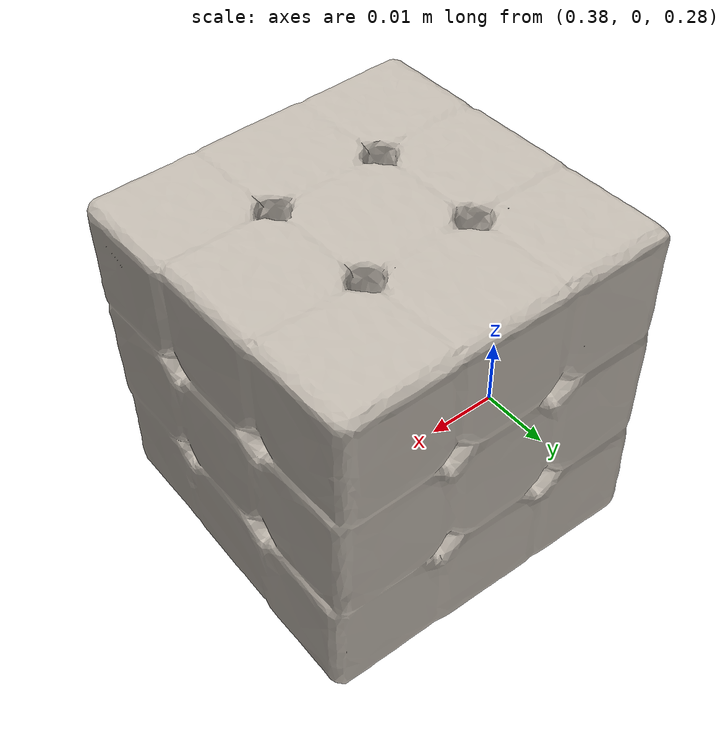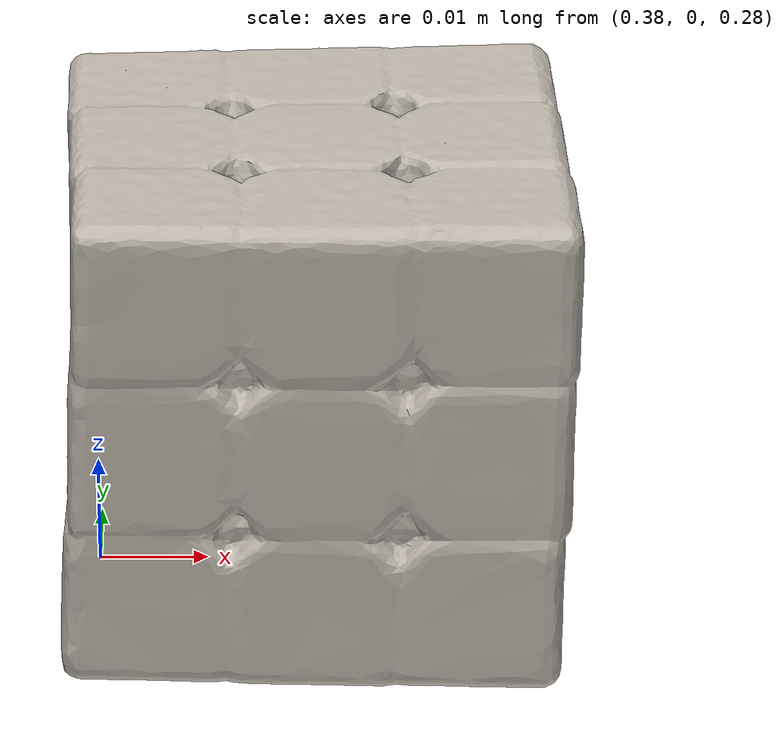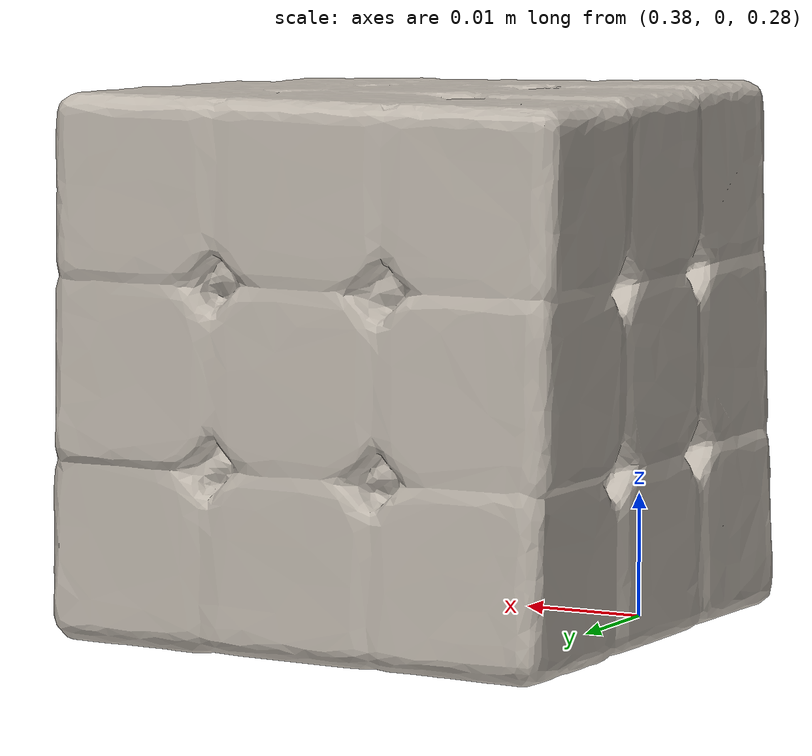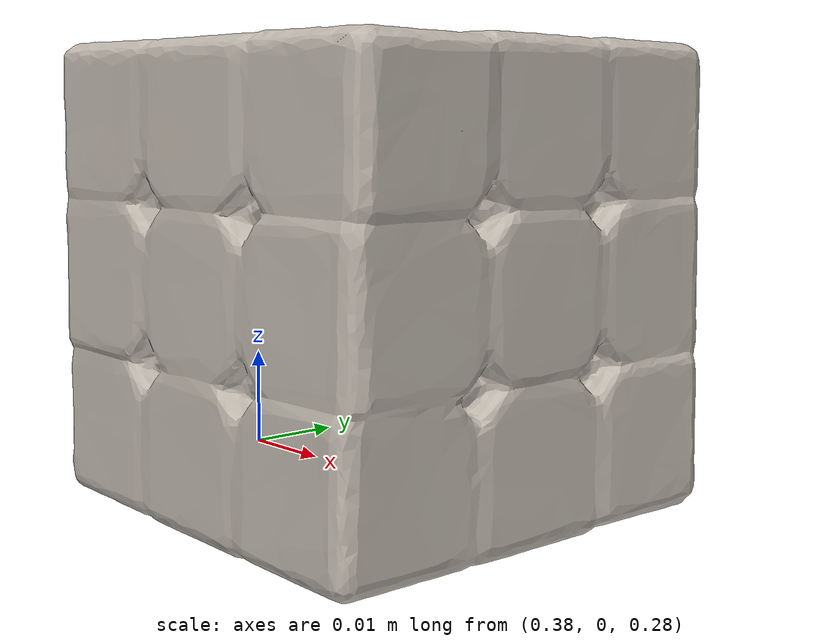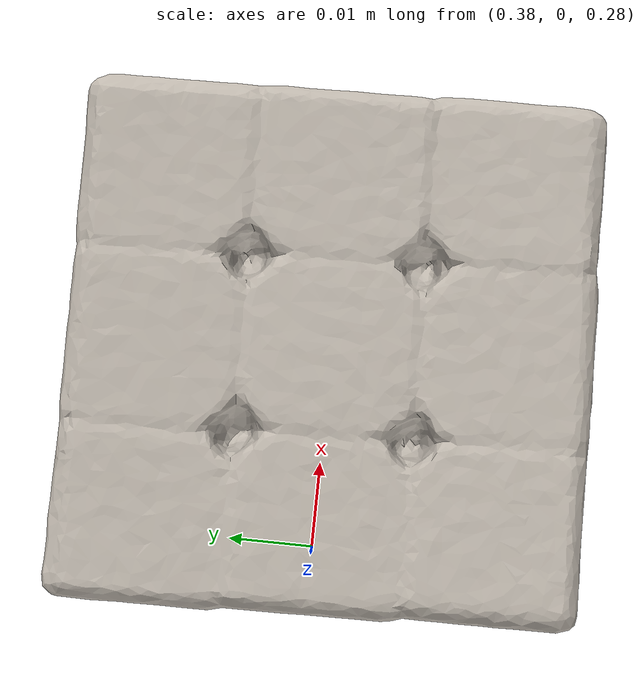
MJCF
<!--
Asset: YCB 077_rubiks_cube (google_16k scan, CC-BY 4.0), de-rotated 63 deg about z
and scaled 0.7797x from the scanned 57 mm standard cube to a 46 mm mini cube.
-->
<?xml version="1.0"?>
<mujoco model="cube">
  <compiler meshdir="assets" texturedir="assets"/>

  <asset>
    <texture name="cube_tex" type="2d" file="cube_tex.png"/>
    <material name="cube_mat" texture="cube_tex" specular="0.15" shininess="0.15"/>
    <mesh name="cube_vis" file="cube_vis.obj"/>
  </asset>

  <worldbody>
    <body name="cube" pos="0.4 0 0.3">
      <freejoint name="cube_joint"/>
      <inertial pos="0.00005 -0.00004 -0.00004" quat="0.996575 -0.063327 -0.039454 0.035648" mass="0.05000" diaginertia="1.650e-05 1.663e-05 1.664e-05"/>
      <geom name="cube_visual" type="mesh" mesh="cube_vis" material="cube_mat" contype="0" conaffinity="0" group="2" mass="0"/>
      <geom name="cube_geom" type="box" pos="0 0 0" size="0.0230 0.0226 0.0226" group="3" rgba="0.5 0.5 0.5 0.3" condim="3" friction="1 0.03 0.003" contype="1" conaffinity="1" solref="0.01 1" mass="0"/>
      <!-- Object site for observations (manipulation point) -->
      <site name="object_site" pos="0 0 0" size="0.01" rgba="1 0 0 1"/>
    </body>
  </worldbody>
</mujoco>
